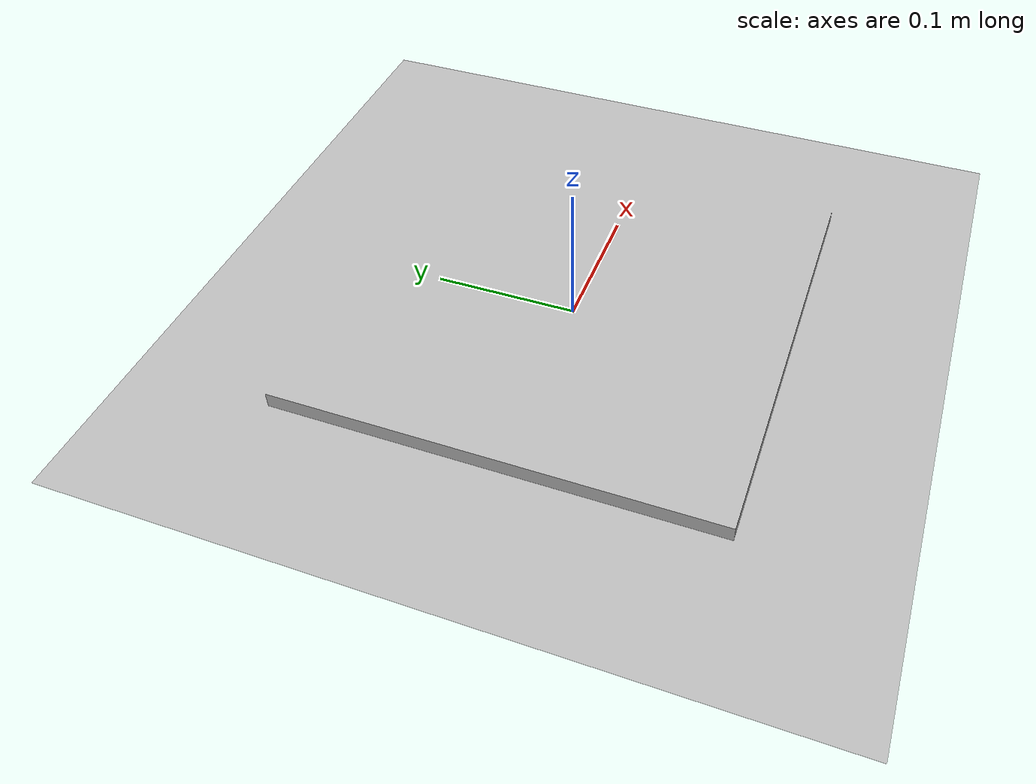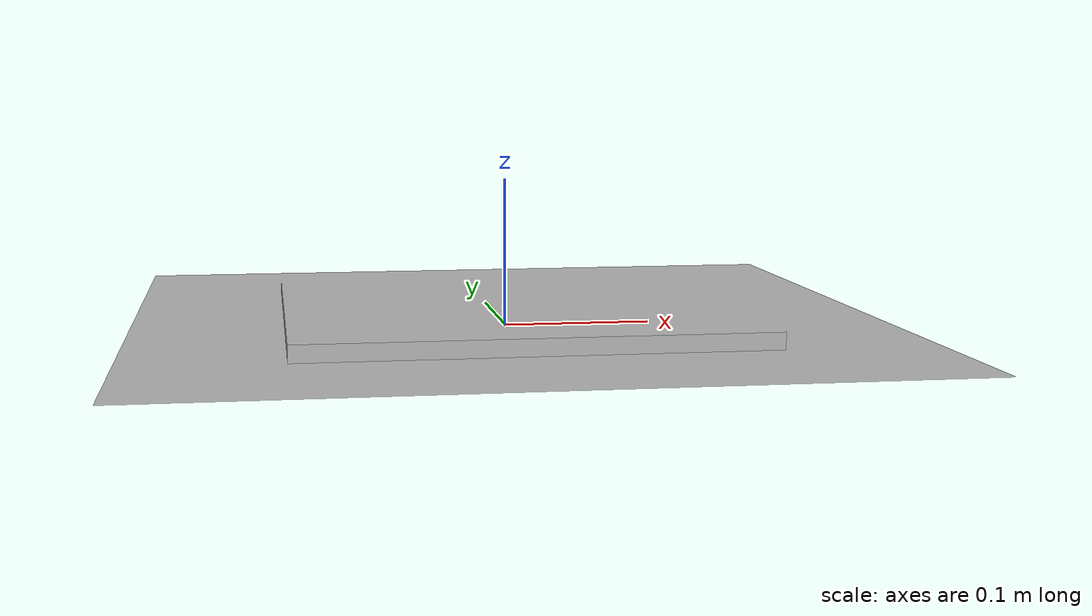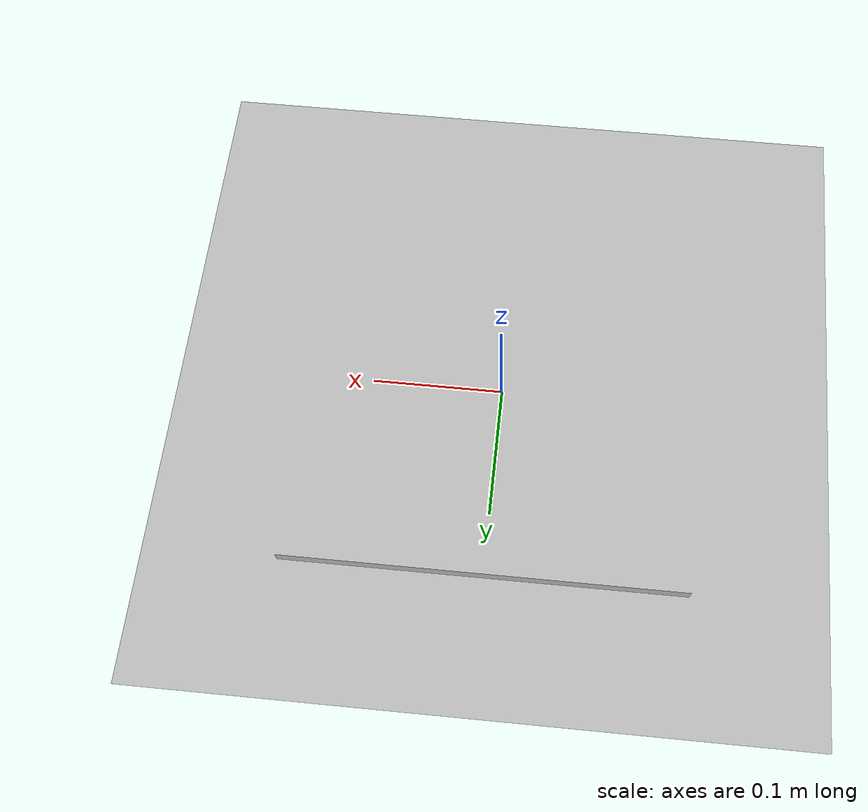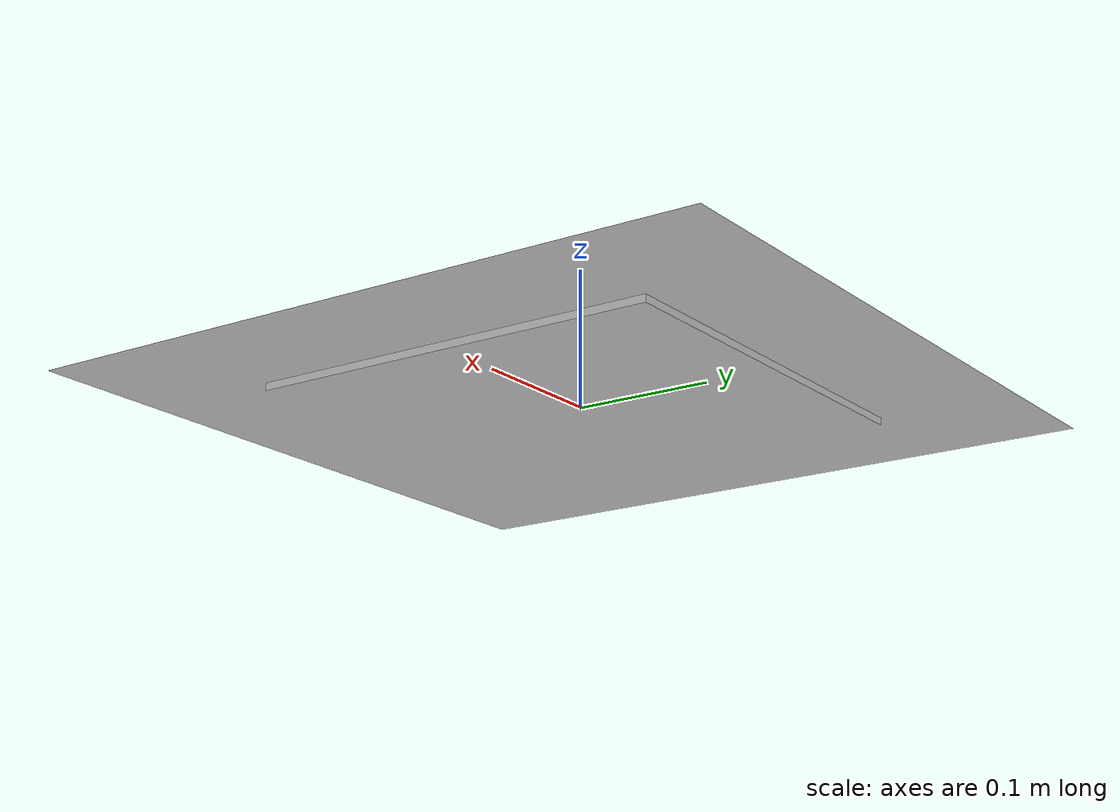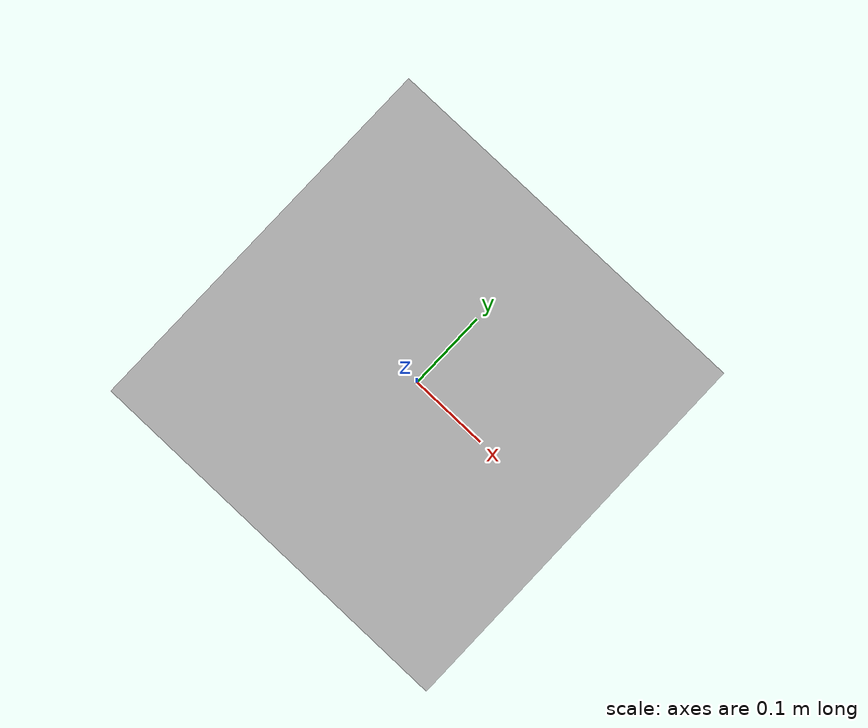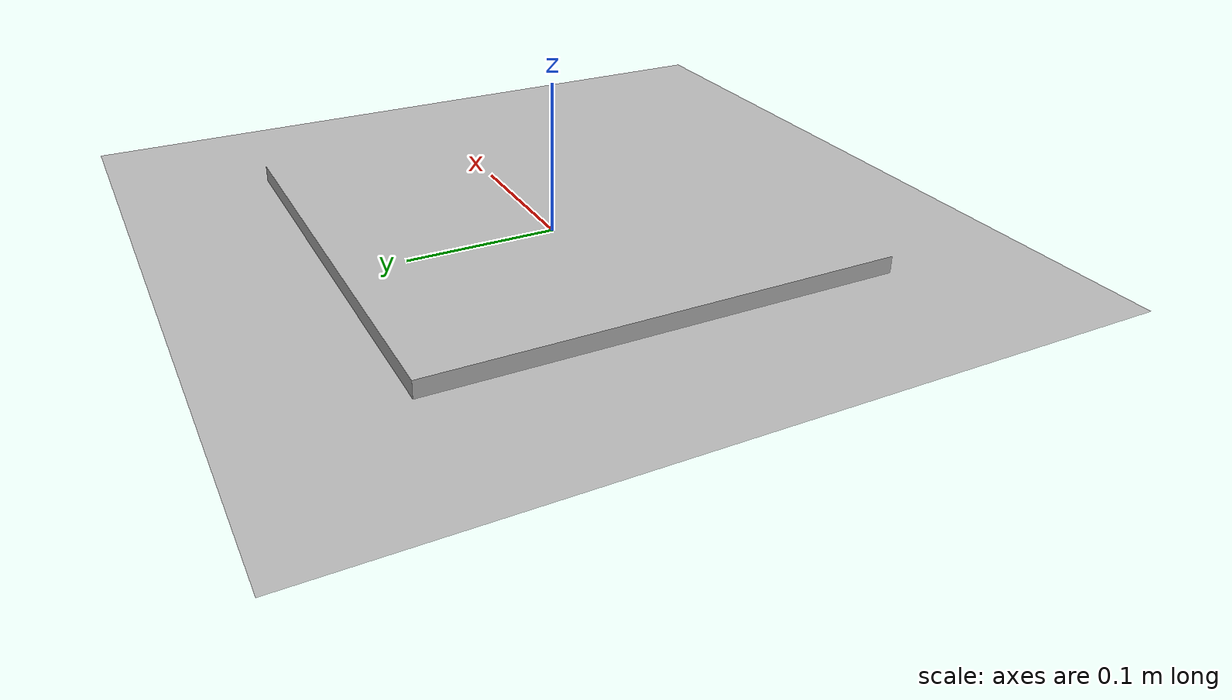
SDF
<?xml version='1.0'?>
<sdf version='1.5'>
  <model name='tag2'>
    <static>true</static>
    <link name="tag2_link">

        <visual name="visual_ar_tag2">
        <geometry>
                <mesh>
                    <uri>model://tag2/meshes/tag2.dae</uri>
                </mesh>
            </geometry>
        </visual>
         <collision name="collision_ar_tag1">
                <geometry>
                <mesh>
                    <uri>model://tag2/meshes/tag2.dae</uri>
                </mesh>
            </geometry>
        </collision>

    </link>
  </model>
</sdf>
~
